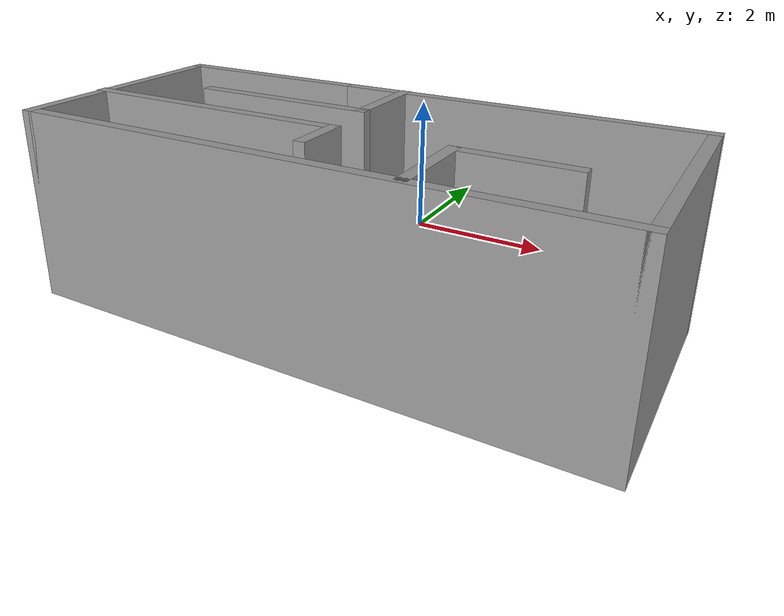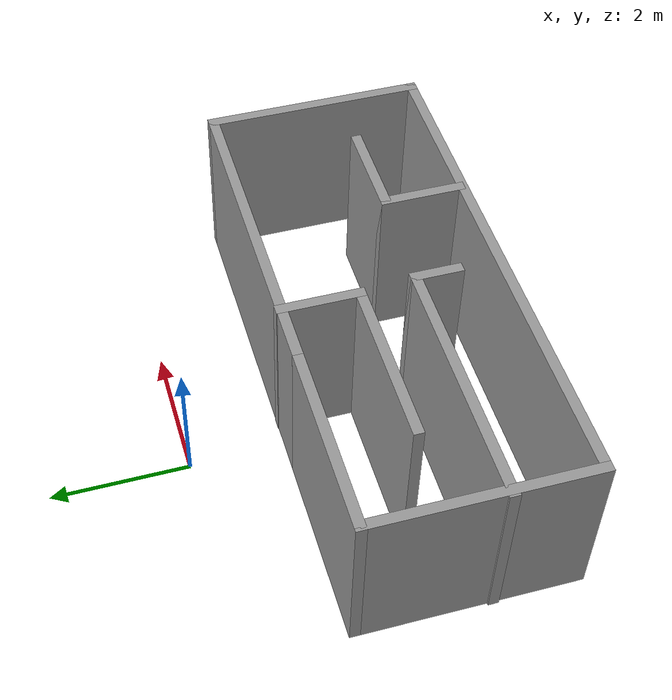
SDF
<?xml version='1.0'?>
<sdf version='1.7'>
  <model name='room'>
    <pose>0.56 -2.3175 0 0 -0 0</pose>
    <link name='Wall_0'>
      <collision name='Wall_0_Collision'>
        <geometry>
          <box>
            <size>2.75 0.15 2.5</size>
          </box>
        </geometry>
        <pose>0 0 1.25 0 -0 0</pose>
      </collision>
      <visual name='Wall_0_Visual'>
        <pose>0 0 1.25 0 -0 0</pose>
        <geometry>
          <box>
            <size>2.75 0.15 2.5</size>
          </box>
        </geometry>
        <material>
          <script>
            <uri>file://media/materials/scripts/gazebo.material</uri>
            <name>Gazebo/Grey</name>
          </script>
          <ambient>1 1 1 1</ambient>
        </material>
        <meta>
          <layer>0</layer>
        </meta>
      </visual>
      <pose>-2.36 0.8575 0 0 -0 3.14159</pose>
    </link>
    <link name='Wall_1'>
      <collision name='Wall_1_Collision'>
        <geometry>
          <box>
            <size>3.25 0.15 2.5</size>
          </box>
        </geometry>
        <pose>0 0 1.25 0 -0 0</pose>
      </collision>
      <visual name='Wall_1_Visual'>
        <pose>0 0 1.25 0 -0 0</pose>
        <geometry>
          <box>
            <size>3.25 0.15 2.5</size>
          </box>
        </geometry>
        <material>
          <script>
            <uri>file://media/materials/scripts/gazebo.material</uri>
            <name>Gazebo/Grey</name>
          </script>
          <ambient>1 1 1 1</ambient>
        </material>
        <meta>
          <layer>0</layer>
        </meta>
      </visual>
      <pose>-3.66 -0.6925 0 0 -0 -1.5708</pose>
    </link>
    <link name='Wall_11'>
      <collision name='Wall_11_Collision'>
        <geometry>
          <box>
            <size>3.75 0.15 2.5</size>
          </box>
        </geometry>
        <pose>0 0 1.25 0 -0 0</pose>
      </collision>
      <visual name='Wall_11_Visual'>
        <pose>0 0 1.25 0 -0 0</pose>
        <geometry>
          <box>
            <size>3.75 0.15 2.5</size>
          </box>
        </geometry>
        <material>
          <script>
            <uri>file://media/materials/scripts/gazebo.material</uri>
            <name>Gazebo/Grey</name>
          </script>
          <ambient>1 1 1 1</ambient>
        </material>
        <meta>
          <layer>0</layer>
        </meta>
      </visual>
      <pose>-1.89 -1.0325 0 0 -0 0</pose>
    </link>
    <link name='Wall_12'>
      <collision name='Wall_12_Collision'>
        <geometry>
          <box>
            <size>0.75 0.15 2.5</size>
          </box>
        </geometry>
        <pose>0 0 1.25 0 -0 0</pose>
      </collision>
      <visual name='Wall_12_Visual'>
        <pose>0 0 1.25 0 -0 0</pose>
        <geometry>
          <box>
            <size>0.75 0.15 2.5</size>
          </box>
        </geometry>
        <material>
          <script>
            <uri>file://media/materials/scripts/gazebo.material</uri>
            <name>Gazebo/Grey</name>
          </script>
          <ambient>1 1 1 1</ambient>
        </material>
        <meta>
          <layer>0</layer>
        </meta>
      </visual>
      <pose>-0.09 -1.3325 0 0 -0 -1.5708</pose>
    </link>
    <link name='Wall_14'>
      <collision name='Wall_14_Collision'>
        <geometry>
          <box>
            <size>1.25 0.15 2.5</size>
          </box>
        </geometry>
        <pose>0 0 1.25 0 -0 0</pose>
      </collision>
      <visual name='Wall_14_Visual'>
        <pose>0 0 1.25 0 -0 0</pose>
        <geometry>
          <box>
            <size>1.25 0.15 2.5</size>
          </box>
        </geometry>
        <material>
          <script>
            <uri>file://media/materials/scripts/gazebo.material</uri>
            <name>Gazebo/Grey</name>
          </script>
          <ambient>1 1 1 1</ambient>
        </material>
        <meta>
          <layer>0</layer>
        </meta>
      </visual>
      <pose>1.41 -1.6425 0 0 -0 1.5708</pose>
    </link>
    <link name='Wall_15'>
      <collision name='Wall_15_Collision'>
        <geometry>
          <box>
            <size>1.5 0.15 2.5</size>
          </box>
        </geometry>
        <pose>0 0 1.25 0 -0 0</pose>
      </collision>
      <visual name='Wall_15_Visual'>
        <pose>0 0 1.25 0 -0 0</pose>
        <geometry>
          <box>
            <size>1.5 0.15 2.5</size>
          </box>
        </geometry>
        <material>
          <script>
            <uri>file://media/materials/scripts/gazebo.material</uri>
            <name>Gazebo/Grey</name>
          </script>
          <ambient>1 1 1 1</ambient>
        </material>
        <meta>
          <layer>0</layer>
        </meta>
      </visual>
      <pose>2.085 -1.0925 0 0 -0 0</pose>
    </link>
    <link name='Wall_2'>
      <collision name='Wall_2_Collision'>
        <geometry>
          <box>
            <size>7.5 0.15 2.5</size>
          </box>
        </geometry>
        <pose>0 0 1.25 0 -0 0</pose>
      </collision>
      <visual name='Wall_2_Visual'>
        <pose>0 0 1.25 0 -0 0</pose>
        <geometry>
          <box>
            <size>7.5 0.15 2.5</size>
          </box>
        </geometry>
        <material>
          <script>
            <uri>file://media/materials/scripts/gazebo.material</uri>
            <name>Gazebo/Grey</name>
          </script>
          <ambient>1 1 1 1</ambient>
        </material>
        <meta>
          <layer>0</layer>
        </meta>
      </visual>
      <pose>0.015 -2.2425 0 0 -0 0</pose>
    </link>
    <link name='Wall_3'>
      <collision name='Wall_3_Collision'>
        <geometry>
          <box>
            <size>3.25 0.15 2.5</size>
          </box>
        </geometry>
        <pose>0 0 1.25 0 -0 0</pose>
      </collision>
      <visual name='Wall_3_Visual'>
        <pose>0 0 1.25 0 -0 0</pose>
        <geometry>
          <box>
            <size>3.25 0.15 2.5</size>
          </box>
        </geometry>
        <material>
          <script>
            <uri>file://media/materials/scripts/gazebo.material</uri>
            <name>Gazebo/Grey</name>
          </script>
          <ambient>1 1 1 1</ambient>
        </material>
        <meta>
          <layer>0</layer>
        </meta>
      </visual>
      <pose>3.69 -0.6925 0 0 -0 1.5708</pose>
    </link>
    <link name='Wall_4'>
      <collision name='Wall_4_Collision'>
        <geometry>
          <box>
            <size>4.75 0.15 2.5</size>
          </box>
        </geometry>
        <pose>0 0 1.25 0 -0 0</pose>
      </collision>
      <visual name='Wall_4_Visual'>
        <pose>0 0 1.25 0 -0 0</pose>
        <geometry>
          <box>
            <size>4.75 0.15 2.5</size>
          </box>
        </geometry>
        <material>
          <script>
            <uri>file://media/materials/scripts/gazebo.material</uri>
            <name>Gazebo/Grey</name>
          </script>
          <ambient>1 1 1 1</ambient>
        </material>
        <meta>
          <layer>0</layer>
        </meta>
      </visual>
      <pose>1.39 0.8575 0 0 -0 3.14159</pose>
    </link>
    <link name='Wall_6'>
      <collision name='Wall_6_Collision'>
        <geometry>
          <box>
            <size>1.25 0.15 2.5</size>
          </box>
        </geometry>
        <pose>0 0 1.25 0 -0 0</pose>
      </collision>
      <visual name='Wall_6_Visual'>
        <pose>0 0 1.25 0 -0 0</pose>
        <geometry>
          <box>
            <size>1.25 0.15 2.5</size>
          </box>
        </geometry>
        <material>
          <script>
            <uri>file://media/materials/scripts/gazebo.material</uri>
            <name>Gazebo/Grey</name>
          </script>
          <ambient>1 1 1 1</ambient>
        </material>
        <meta>
          <layer>0</layer>
        </meta>
      </visual>
      <pose>-0.17 0.3175 0 0 -0 -1.5708</pose>
    </link>
    <link name='Wall_9'>
      <collision name='Wall_9_Collision'>
        <geometry>
          <box>
            <size>2.5 0.15 2.5</size>
          </box>
        </geometry>
        <pose>0 0 1.25 0 -0 0</pose>
      </collision>
      <visual name='Wall_9_Visual'>
        <pose>0 0 1.25 0 -0 0</pose>
        <geometry>
          <box>
            <size>2.5 0.15 2.5</size>
          </box>
        </geometry>
        <material>
          <script>
            <uri>file://media/materials/scripts/gazebo.material</uri>
            <name>Gazebo/Grey</name>
          </script>
          <ambient>1 1 1 1</ambient>
        </material>
        <meta>
          <layer>0</layer>
        </meta>
      </visual>
      <pose>-1.345 -0.2325 0 0 -0 3.14159</pose>
    </link>
    <static>1</static>
  </model>
</sdf>
